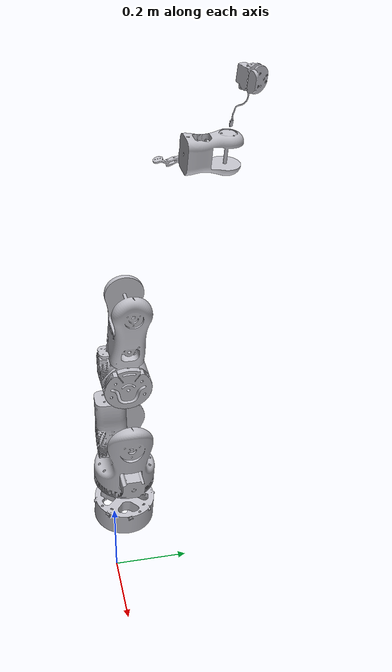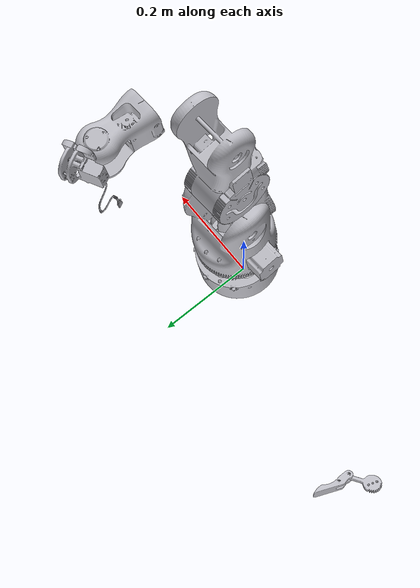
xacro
<?xml version="1.0"?>
<robot xmlns:xacro="http://www.ros.org/wiki/xacro" name="Robot">
    <xacro:arg name="initial_positions_file" default="initial_positions.yaml" />

    <!-- Import Robot urdf file -->
    <!-- xacro:include filename="/home/julien/Documents/ros/robot_arm/src/Robot_description/urdf/Robot.xacro" /-->
    <xacro:include filename="/home/julien/Documents/ros/robot_arm/src/Robot_description/urdf/materials.xacro" />
    <xacro:include filename="Robot.trans/home/julien/Documents/ros/robot_arm/src/Robot_description/urdf/Robot.trans" />
    <xacro:include filename="/home/julien/Documents/ros/robot_arm/src/Robot_description/urdf/Robot.gazebo" />
    <link name="base_link">
    <inertial>
        <origin xyz="9.323197461062662e-06 -2.179181289320399e-06 0.03766434672102797" rpy="0 0 0"/>
        <mass value="0.6555115079798821"/>
        <inertia ixx="0.001559" iyy="0.001558" izz="0.002695" ixy="-0.0" iyz="0.0" ixz="-0.0"/>
    </inertial>
    <visual>
        <origin xyz="0 0 0" rpy="0 0 0"/>
        <geometry>
        <mesh filename="package://Robot_description/meshes/base_link.stl" scale="0.001 0.001 0.001"/>
        </geometry>
        <material name="silver"/>
    </visual>
    <collision>
        <origin xyz="0 0 0" rpy="0 0 0"/>
        <geometry>
        <mesh filename="package://Robot_description/meshes/base_link.stl" scale="0.001 0.001 0.001"/>
        </geometry>
    </collision>
    </link>

    <link name="link1_1">
    <inertial>
        <origin xyz="-8.747364957463794e-05 0.00023000695233989162 0.08027934823103827" rpy="0 0 0"/>
        <mass value="1.9598700732514862"/>
        <inertia ixx="0.009232" iyy="0.013036" izz="0.008743" ixy="-0.000121" iyz="-2e-06" ixz="-9e-06"/>
    </inertial>
    <visual>
        <origin xyz="0 0 0" rpy="0 0 0"/>
        <geometry>
        <mesh filename="package://Robot_description/meshes/link1_1.stl" scale="0.001 0.001 0.001"/>
        </geometry>
        <material name="silver"/>
    </visual>
    <collision>
        <origin xyz="0 0 0" rpy="0 0 0"/>
        <geometry>
        <mesh filename="package://Robot_description/meshes/link1_1.stl" scale="0.001 0.001 0.001"/>
        </geometry>
    </collision>
    </link>

    <link name="link2_1">
    <inertial>
        <origin xyz="-0.03550849992822761 -0.20005697525257984 0.10074520526952119" rpy="0 0 0"/>
        <mass value="1.9144645074140343"/>
        <inertia ixx="0.015946" iyy="0.016692" izz="0.003538" ixy="-2.5e-05" iyz="0.000266" ixz="-0.000131"/>
    </inertial>
    <visual>
        <origin xyz="0 0 0" rpy="0 0 0"/>
        <geometry>
        <mesh filename="package://Robot_description/meshes/link2_1.stl" scale="0.001 0.001 0.001"/>
        </geometry>
        <material name="silver"/>
    </visual>
    <collision>
        <origin xyz="0 0 0" rpy="0 0 0"/>
        <geometry>
        <mesh filename="package://Robot_description/meshes/link2_1.stl" scale="0.001 0.001 0.001"/>
        </geometry>
    </collision>
    </link>

    <link name="link3_1">
    <inertial>
        <origin xyz="-0.002261294975221836 -0.06191695522524358 0.5730413856217828" rpy="0 0 0"/>
        <mass value="0.7274515218419347"/>
        <inertia ixx="0.002081" iyy="0.001928" izz="0.000789" ixy="7e-06" iyz="0.000373" ixz="-1.9e-05"/>
    </inertial>
    <visual>
        <origin xyz="0 0 0" rpy="0 0 0"/>
        <geometry>
        <mesh filename="package://Robot_description/meshes/link3_1.stl" scale="0.001 0.001 0.001"/>
        </geometry>
        <material name="silver"/>
    </visual>
    <collision>
        <origin xyz="0 0 0" rpy="0 0 0"/>
        <geometry>
        <mesh filename="package://Robot_description/meshes/link3_1.stl" scale="0.001 0.001 0.001"/>
        </geometry>
    </collision>
    </link>

    <link name="link4_1">
    <inertial>
        <origin xyz="0.08399775381594644 -0.46346924906243314 0.0999798189364719" rpy="0 0 0"/>
        <mass value="0.32455418653717066"/>
        <inertia ixx="0.000669" iyy="0.000571" izz="0.000352" ixy="4.1e-05" iyz="6.1e-05" ixz="7e-06"/>
    </inertial>
    <visual>
        <origin xyz="0 0 0" rpy="0 0 0"/>
        <geometry>
        <mesh filename="package://Robot_description/meshes/link4_1.stl" scale="0.001 0.001 0.001"/>
        </geometry>
        <material name="silver"/>
    </visual>
    <collision>
        <origin xyz="0 0 0" rpy="0 0 0"/>
        <geometry>
        <mesh filename="package://Robot_description/meshes/link4_1.stl" scale="0.001 0.001 0.001"/>
        </geometry>
    </collision>
    </link>

    <link name="link5_1">
    <inertial>
        <origin xyz="-0.18454465996686803 0.41770479167069396 0.21286940543338817" rpy="0 0 0"/>
        <mass value="0.1607410659493192"/>
        <inertia ixx="9.1e-05" iyy="0.000104" izz="7.9e-05" ixy="-5e-06" iyz="5e-06" ixz="-8e-06"/>
    </inertial>
    <visual>
        <origin xyz="0 0 0" rpy="0 0 0"/>
        <geometry>
        <mesh filename="package://Robot_description/meshes/link5_1.stl" scale="0.001 0.001 0.001"/>
        </geometry>
        <material name="silver"/>
    </visual>
    <collision>
        <origin xyz="0 0 0" rpy="0 0 0"/>
        <geometry>
        <mesh filename="package://Robot_description/meshes/link5_1.stl" scale="0.001 0.001 0.001"/>
        </geometry>
    </collision>
    </link>

    <link name="link6_1">
    <inertial>
        <origin xyz="-0.1139190355815723 0.43442970533659214 0.38100115968800496" rpy="0 0 0"/>
        <mass value="0.01865052429923146"/>
        <inertia ixx="1e-05" iyy="6e-06" izz="1e-05" ixy="2e-06" iyz="-1e-06" ixz="-1e-06"/>
    </inertial>
    <visual>
        <origin xyz="0 0 0" rpy="0 0 0"/>
        <geometry>
        <mesh filename="package://Robot_description/meshes/link6_1.stl" scale="0.001 0.001 0.001"/>
        </geometry>
        <material name="silver"/>
    </visual>
    <collision>
        <origin xyz="0 0 0" rpy="0 0 0"/>
        <geometry>
        <mesh filename="package://Robot_description/meshes/link6_1.stl" scale="0.001 0.001 0.001"/>
        </geometry>
    </collision>
    </link>

    <link name="Servo_Gear_1">
    <inertial>
        <origin xyz="0.018998787739794347 -0.03233241707548999 0.024569258659072113" rpy="0 0 0"/>
        <mass value="0.015458635829547249"/>
        <inertia ixx="1.4e-05" iyy="1e-05" izz="9e-06" ixy="3e-06" iyz="6e-06" ixz="-4e-06"/>
    </inertial>
    <visual>
        <origin xyz="0 0 0" rpy="0 0 0"/>
        <geometry>
        <mesh filename="package://Robot_description/meshes/Servo_Gear_1.stl" scale="0.001 0.001 0.001"/>
        </geometry>
        <material name="silver"/>
    </visual>
    <collision>
        <origin xyz="0 0 0" rpy="0 0 0"/>
        <geometry>
        <mesh filename="package://Robot_description/meshes/Servo_Gear_1.stl" scale="0.001 0.001 0.001"/>
        </geometry>
    </collision>
    </link>

    <link name="Idol_Gear_1">
    <inertial>
        <origin xyz="0.01859007116218464 0.005649685131553797 0.04057153069940722" rpy="0 0 0"/>
        <mass value="0.01558102330322005"/>
        <inertia ixx="1.4e-05" iyy="1.6e-05" izz="3e-06" ixy="0.0" iyz="0.0" ixz="-5e-06"/>
    </inertial>
    <visual>
        <origin xyz="0 0 0" rpy="0 0 0"/>
        <geometry>
        <mesh filename="package://Robot_description/meshes/Idol_Gear_1.stl" scale="0.001 0.001 0.001"/>
        </geometry>
        <material name="silver"/>
    </visual>
    <collision>
        <origin xyz="0 0 0" rpy="0 0 0"/>
        <geometry>
        <mesh filename="package://Robot_description/meshes/Idol_Gear_1.stl" scale="0.001 0.001 0.001"/>
        </geometry>
    </collision>
    </link>

    <joint name="Joint1" type="revolute">
    <origin xyz="-7e-06 4e-06 0.065" rpy="0 0 0"/>
    <parent link="base_link"/>
    <child link="link1_1"/>
    <axis xyz="-0.000105 6.8e-05 1.0"/>
    <limit upper="3.1415927" lower="-3.1415927" effort="100" velocity="100"/>
    </joint>

    <joint name="Joint2" type="revolute">
    <origin xyz="0 0 0.1655" rpy="0 0 0"/>
    <parent link="link1_1"/>
    <child link="link2_1"/>
    <axis xyz="0 1 0"/>
    <limit upper="1.919862" lower="-1.919862" effort="100" velocity="100"/>
    </joint>

    <joint name="Joint3" type="revolute">
    <origin xyz="0.0025 0 0.222" rpy="0 0 0"/>
    <parent link="link2_1"/>
    <child link="link3_1"/>
    <axis xyz="0 1 0"/>
    <limit upper="2.10" lower="-2.10" effort="100" velocity="100"/>
    </joint>

    <joint name="Joint4" type="revolute">
    <origin xyz="0 0 0.1291" rpy="0 0 0"/>
    <parent link="link3_1"/>
    <child link="link4_1"/>
    <axis xyz="0 0 1"/>
    <limit upper="3.1415927" lower="-3.1415927" effort="100" velocity="100"/>
    </joint>

    <joint name="Joint5" type="revolute">
    <origin xyz="0 0 0.095" rpy="0 0 0"/>
    <parent link="link4_1"/>
    <child link="link5_1"/>
    <axis xyz="0 1 0"/>
    <limit upper="1.832596" lower="-1.832596" effort="100" velocity="100"/>
    </joint>

    <joint name="Joint6" type="revolute">
    <origin xyz="0 0 0.0469" rpy="0 0 0"/>
    <parent link="link5_1"/>
    <child link="link6_1"/>
    <axis xyz="0 0 1"/>
    <limit upper="3.1415927" lower="-3.1415927" effort="100" velocity="100"/>
    </joint>

    <joint name="Servo Joint" type="revolute">
    <origin xyz="0 -0.014 0.024" rpy="0 -1.5708 0"/>
    <parent link="link6_1"/>
    <child link="Servo_Gear_1"/>
    <axis xyz="0 0 -1"/>
    <limit upper="0.959931" lower="0.523599" effort="100" velocity="100"/>
    </joint>

    <joint name="Idol Joint" type="revolute">
    <origin xyz="0 0.014 0.024" rpy="0 -1.5708 0"/>
    <parent link="link6_1"/>
    <child link="Idol_Gear_1"/>
    <axis xyz="0 0 1"/>
    <limit upper="0.959931" lower="0.523599" effort="100" velocity="100"/>
    </joint>

    <!-- Import control_xacro -->
    <!--xacro:include filename="Robot.ros2_control.xacro" /-->
    <xacro:macro name="Robot_ros2_control" params="name initial_positions_file">
        <xacro:property name="initial_positions" value="${load_yaml(initial_positions_file)['initial_positions']}"/>

        <ros2_control name="${name}" type="system">
            <hardware>
                <!-- By default, set up controllers for simulation. This won't work on real hardware -->
                <plugin>mock_components/GenericSystem</plugin>
            </hardware>
            <joint name="Joint1">
                <command_interface name="position"/>
                <state_interface name="position">
                  <param name="initial_value">${initial_positions['Joint1']}</param>
                </state_interface>
                <state_interface name="velocity"/>
            </joint>
            <joint name="Joint2">
                <command_interface name="position"/>
                <state_interface name="position">
                  <param name="initial_value">${initial_positions['Joint2']}</param>
                </state_interface>
                <state_interface name="velocity"/>
            </joint>
            <joint name="Joint3">
                <command_interface name="position"/>
                <state_interface name="position">
                  <param name="initial_value">${initial_positions['Joint3']}</param>
                </state_interface>
                <state_interface name="velocity"/>
            </joint>
            <joint name="Joint4">
                <command_interface name="position"/>
                <state_interface name="position">
                  <param name="initial_value">${initial_positions['Joint4']}</param>
                </state_interface>
                <state_interface name="velocity"/>
            </joint>
            <joint name="Joint5">
                <command_interface name="position"/>
                <state_interface name="position">
                  <param name="initial_value">${initial_positions['Joint5']}</param>
                </state_interface>
                <state_interface name="velocity"/>
            </joint>
            <joint name="Joint6">
                <command_interface name="position"/>
                <state_interface name="position">
                  <param name="initial_value">${initial_positions['Joint6']}</param>
                </state_interface>
                <state_interface name="velocity"/>
            </joint>
            <joint name="Idol Joint">
                <command_interface name="position"/>
                <state_interface name="position">
                  <param name="initial_value">${initial_positions['Idol Joint']}</param>
                </state_interface>
                <state_interface name="velocity"/>
            </joint>
            <joint name="Servo Joint">
                <command_interface name="position"/>
                <state_interface name="position">
                  <param name="initial_value">${initial_positions['Servo Joint']}</param>
                </state_interface>
                <state_interface name="velocity"/>
            </joint>

        </ros2_control>
    </xacro:macro>

    <xacro:Robot_ros2_control name="FakeSystem" initial_positions_file="$(arg initial_positions_file)"/>

</robot>

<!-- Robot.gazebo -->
<robot name="Robot" xmlns:xacro="http://www.ros.org/wiki/xacro" >

<xacro:property name="body_color" value="Gazebo/Silver" />

<gazebo>
  <plugin name="control" filename="libgazebo_ros_control.so"/>
</gazebo>
<gazebo reference="base_link">
  <material>${body_color}</material>
  <mu1>0.2</mu1>
  <mu2>0.2</mu2>
  <selfCollide>true</selfCollide>
  <gravity>true</gravity>
</gazebo>

<gazebo reference="link5_1">
  <material>${body_color}</material>
  <mu1>0.2</mu1>
  <mu2>0.2</mu2>
  <selfCollide>true</selfCollide>
</gazebo>

<gazebo reference="Servo_Gear_1">
  <material>${body_color}</material>
  <mu1>0.2</mu1>
  <mu2>0.2</mu2>
  <selfCollide>true</selfCollide>
</gazebo>

<gazebo reference="Idol_Gear_1">
  <material>${body_color}</material>
  <mu1>0.2</mu1>
  <mu2>0.2</mu2>
  <selfCollide>true</selfCollide>
</gazebo>

<gazebo reference="link6_1">
  <material>${body_color}</material>
  <mu1>0.2</mu1>
  <mu2>0.2</mu2>
  <selfCollide>true</selfCollide>
</gazebo>

<gazebo reference="link1_1">
  <material>${body_color}</material>
  <mu1>0.2</mu1>
  <mu2>0.2</mu2>
  <selfCollide>true</selfCollide>
</gazebo>

<gazebo reference="link2_1">
  <material>${body_color}</material>
  <mu1>0.2</mu1>
  <mu2>0.2</mu2>
  <selfCollide>true</selfCollide>
</gazebo>

<gazebo reference="link3_1">
  <material>${body_color}</material>
  <mu1>0.2</mu1>
  <mu2>0.2</mu2>
  <selfCollide>true</selfCollide>
</gazebo>

<gazebo reference="link4_1">
  <material>${body_color}</material>
  <mu1>0.2</mu1>
  <mu2>0.2</mu2>
  <selfCollide>true</selfCollide>
</gazebo>

</robot>
